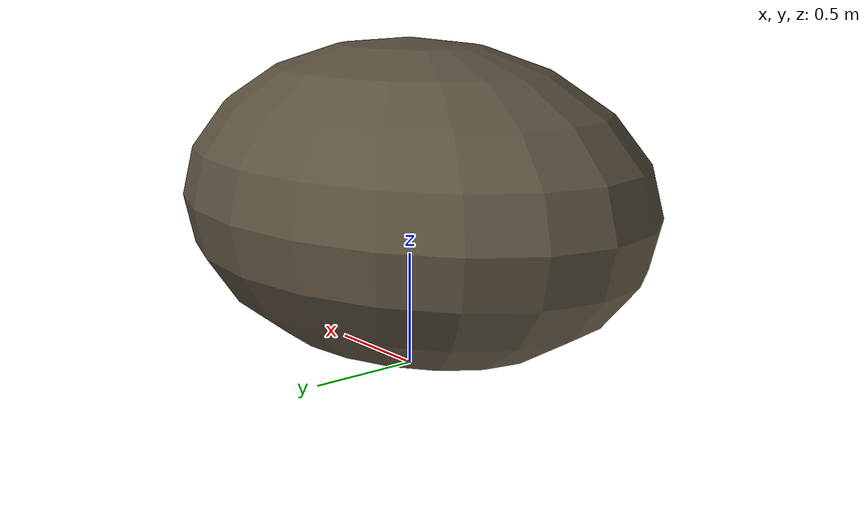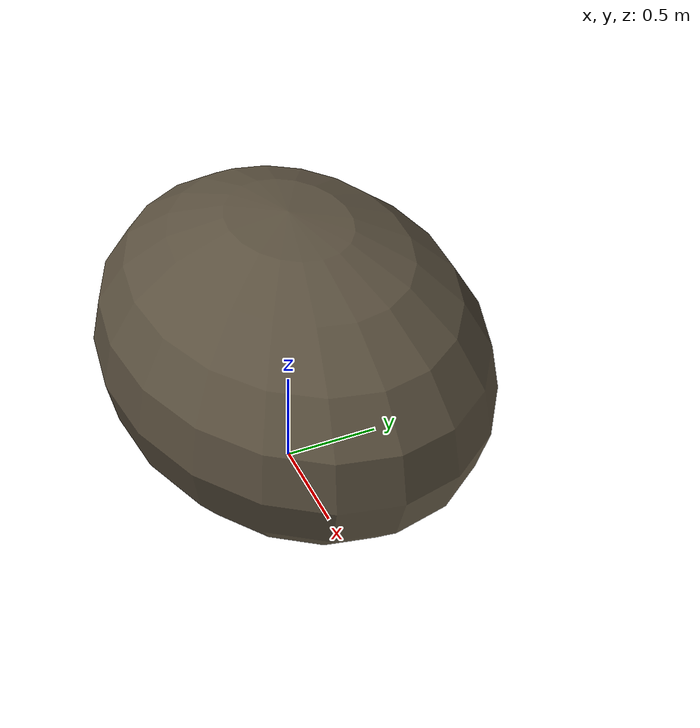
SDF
<?xml version="1.0" ?>
<sdf version="1.10">
  <model name="rock_imported">
    <pose>0 0 0 0 0 0</pose>
    <static>true</static>
    <link name="rock_visual_link">
      <!-- Lightweight visual proxy; instance yaw still gives the scattered
           rocks varied orientations without rendering the 326k-triangle GLB. -->
      <pose>0 0 0.75 0 0 0</pose>
      <visual name="rock_ellipsoid_visual">
        <geometry><ellipsoid><radii>1.2 0.9 0.7</radii></ellipsoid></geometry>
        <material>
          <ambient>0.20 0.18 0.14 1</ambient>
          <diffuse>0.36 0.32 0.25 1</diffuse>
          <specular>0.03 0.03 0.025 1</specular>
          <pbr><metal><roughness>0.95</roughness><metalness>0.0</metalness></metal></pbr>
        </material>
      </visual>
    </link>
    <link name="rock_collision_link">
      <!-- Unchanged collision keeps physics and LiDAR behavior stable. -->
      <pose>0 0 0.75 0 0 0</pose>
      <collision name="rock_collision">
        <geometry><sphere><radius>1.0</radius></sphere></geometry>
      </collision>
    </link>
  </model>
</sdf>
